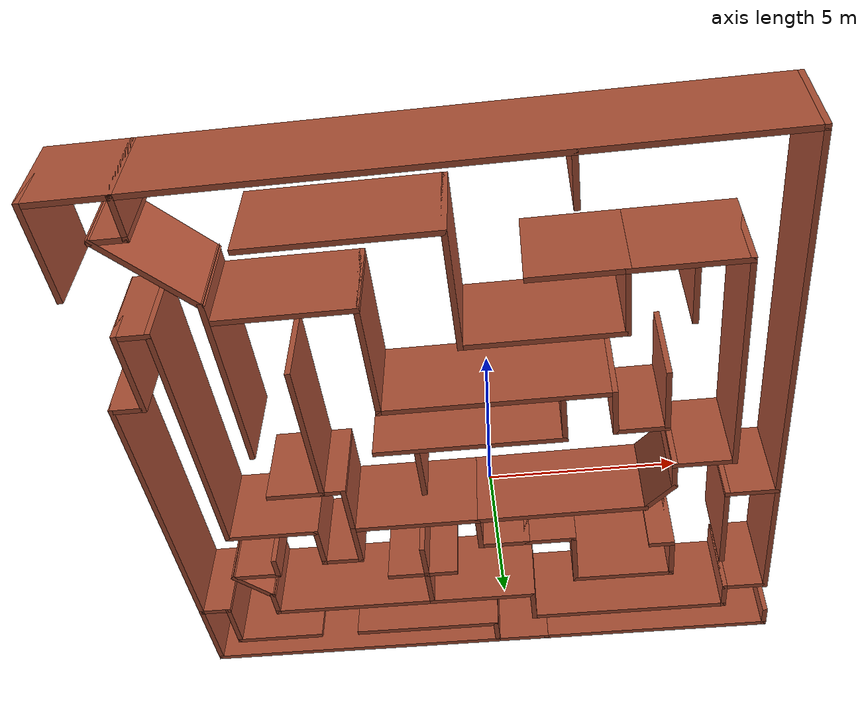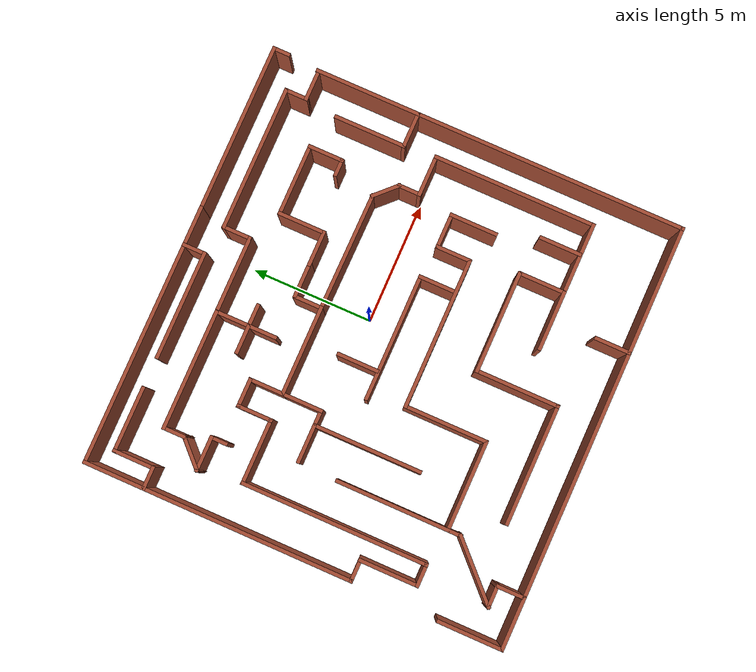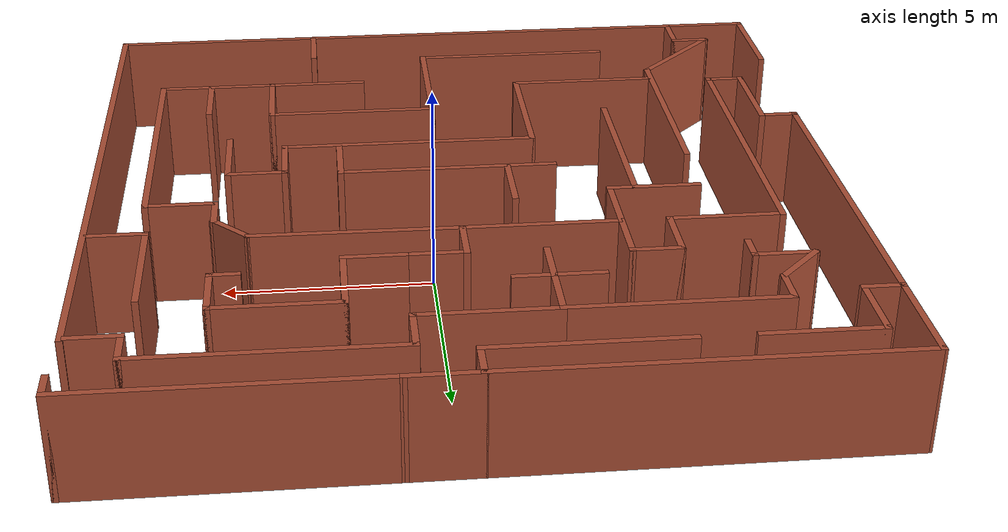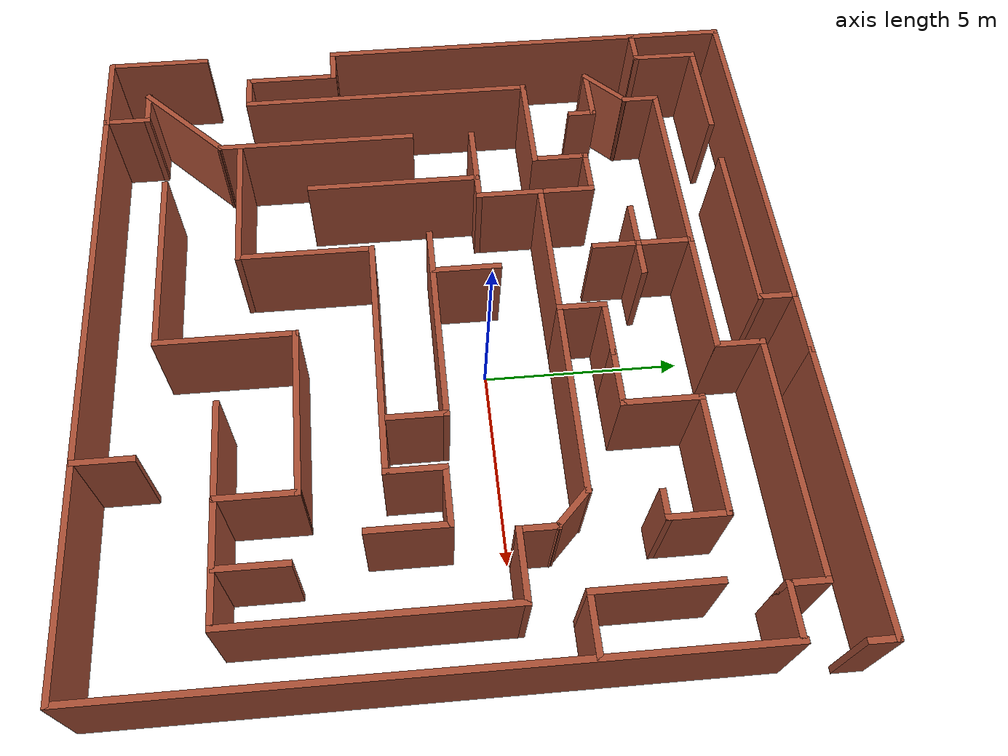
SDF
<?xml version='1.0'?>
<sdf version='1.7'>
  <model name='Maze'>
    <pose>-0.775833 -1.0414 0 0 -0 0</pose>
    <link name='Wall_10'>
      <collision name='Wall_10_Collision'>
        <geometry>
          <box>
            <size>1.75 0.15 2.5</size>
          </box>
        </geometry>
        <pose>0 0 1.25 0 -0 0</pose>
      </collision>
      <visual name='Wall_10_Visual'>
        <pose>0 0 1.25 0 -0 0</pose>
        <geometry>
          <box>
            <size>1.75 0.15 2.5</size>
          </box>
        </geometry>
        <material>
          <script>
            <uri>file://media/materials/scripts/gazebo.material</uri>
            <name>Gazebo/Bricks</name>
          </script>
          <ambient>1 1 1 1</ambient>
        </material>
        <meta>
          <layer>0</layer>
        </meta>
      </visual>
      <pose>-7.88795 6.98048 0 0 -0 -1.5708</pose>
    </link>
    <link name='Wall_100'>
      <collision name='Wall_100_Collision'>
        <geometry>
          <box>
            <size>1.5 0.15 2.5</size>
          </box>
        </geometry>
        <pose>0 0 1.25 0 -0 0</pose>
      </collision>
      <visual name='Wall_100_Visual'>
        <pose>0 0 1.25 0 -0 0</pose>
        <geometry>
          <box>
            <size>1.5 0.15 2.5</size>
          </box>
        </geometry>
        <material>
          <script>
            <uri>file://media/materials/scripts/gazebo.material</uri>
            <name>Gazebo/Bricks</name>
          </script>
          <ambient>1 1 1 1</ambient>
        </material>
        <meta>
          <layer>0</layer>
        </meta>
      </visual>
      <pose>5.81205 5.10548 0 0 -0 -1.5708</pose>
    </link>
    <link name='Wall_101'>
      <collision name='Wall_101_Collision'>
        <geometry>
          <box>
            <size>0.75 0.15 2.5</size>
          </box>
        </geometry>
        <pose>0 0 1.25 0 -0 0</pose>
      </collision>
      <visual name='Wall_101_Visual'>
        <pose>0 0 1.25 0 -0 0</pose>
        <geometry>
          <box>
            <size>0.75 0.15 2.5</size>
          </box>
        </geometry>
        <material>
          <script>
            <uri>file://media/materials/scripts/gazebo.material</uri>
            <name>Gazebo/Bricks</name>
          </script>
          <ambient>1 1 1 1</ambient>
        </material>
        <meta>
          <layer>0</layer>
        </meta>
      </visual>
      <pose>5.51205 4.43048 0 0 -0 3.14159</pose>
    </link>
    <link name='Wall_103'>
      <collision name='Wall_103_Collision'>
        <geometry>
          <box>
            <size>1.5 0.15 2.5</size>
          </box>
        </geometry>
        <pose>0 0 1.25 0 -0 0</pose>
      </collision>
      <visual name='Wall_103_Visual'>
        <pose>0 0 1.25 0 -0 0</pose>
        <geometry>
          <box>
            <size>1.5 0.15 2.5</size>
          </box>
        </geometry>
        <material>
          <script>
            <uri>file://media/materials/scripts/gazebo.material</uri>
            <name>Gazebo/Bricks</name>
          </script>
          <ambient>1 1 1 1</ambient>
        </material>
        <meta>
          <layer>0</layer>
        </meta>
      </visual>
      <pose>7.96548 2.47455 0 0 -0 3.14159</pose>
    </link>
    <link name='Wall_104'>
      <collision name='Wall_104_Collision'>
        <geometry>
          <box>
            <size>3 0.15 2.5</size>
          </box>
        </geometry>
        <pose>0 0 1.25 0 -0 0</pose>
      </collision>
      <visual name='Wall_104_Visual'>
        <pose>0 0 1.25 0 -0 0</pose>
        <geometry>
          <box>
            <size>3 0.15 2.5</size>
          </box>
        </geometry>
        <material>
          <script>
            <uri>file://media/materials/scripts/gazebo.material</uri>
            <name>Gazebo/Bricks</name>
          </script>
          <ambient>1 1 1 1</ambient>
        </material>
        <meta>
          <layer>0</layer>
        </meta>
      </visual>
      <pose>7.29048 3.89955 0 0 -0 1.5708</pose>
    </link>
    <link name='Wall_106'>
      <collision name='Wall_106_Collision'>
        <geometry>
          <box>
            <size>7 0.15 2.5</size>
          </box>
        </geometry>
        <pose>0 0 1.25 0 -0 0</pose>
      </collision>
      <visual name='Wall_106_Visual'>
        <pose>0 0 1.25 0 -0 0</pose>
        <geometry>
          <box>
            <size>7 0.15 2.5</size>
          </box>
        </geometry>
        <material>
          <script>
            <uri>file://media/materials/scripts/gazebo.material</uri>
            <name>Gazebo/Bricks</name>
          </script>
          <ambient>1 1 1 1</ambient>
        </material>
        <meta>
          <layer>0</layer>
        </meta>
      </visual>
      <pose>5.3579 8.63349 0 0 -0 0</pose>
    </link>
    <link name='Wall_107'>
      <collision name='Wall_107_Collision'>
        <geometry>
          <box>
            <size>0.75 0.15 2.5</size>
          </box>
        </geometry>
        <pose>0 0 1.25 0 -0 0</pose>
      </collision>
      <visual name='Wall_107_Visual'>
        <pose>0 0 1.25 0 -0 0</pose>
        <geometry>
          <box>
            <size>0.75 0.15 2.5</size>
          </box>
        </geometry>
        <material>
          <script>
            <uri>file://media/materials/scripts/gazebo.material</uri>
            <name>Gazebo/Bricks</name>
          </script>
          <ambient>1 1 1 1</ambient>
        </material>
        <meta>
          <layer>0</layer>
        </meta>
      </visual>
      <pose>8.7829 8.33349 0 0 -0 -1.5708</pose>
    </link>
    <link name='Wall_11'>
      <collision name='Wall_11_Collision'>
        <geometry>
          <box>
            <size>1 0.15 2.5</size>
          </box>
        </geometry>
        <pose>0 0 1.25 0 -0 0</pose>
      </collision>
      <visual name='Wall_11_Visual'>
        <pose>0 0 1.25 0 -0 0</pose>
        <geometry>
          <box>
            <size>1 0.15 2.5</size>
          </box>
        </geometry>
        <material>
          <script>
            <uri>file://media/materials/scripts/gazebo.material</uri>
            <name>Gazebo/Bricks</name>
          </script>
          <ambient>1 1 1 1</ambient>
        </material>
        <meta>
          <layer>0</layer>
        </meta>
      </visual>
      <pose>-8.31295 6.18048 0 0 -0 3.14159</pose>
    </link>
    <link name='Wall_12'>
      <collision name='Wall_12_Collision'>
        <geometry>
          <box>
            <size>2.6029 0.15 2.5</size>
          </box>
        </geometry>
        <pose>0 0 1.25 0 -0 0</pose>
      </collision>
      <visual name='Wall_12_Visual'>
        <pose>0 0 1.25 0 -0 0</pose>
        <geometry>
          <box>
            <size>2.6029 0.15 2.5</size>
          </box>
        </geometry>
        <material>
          <script>
            <uri>file://media/materials/scripts/gazebo.material</uri>
            <name>Gazebo/Bricks</name>
          </script>
          <ambient>1 1 1 1</ambient>
        </material>
        <meta>
          <layer>0</layer>
        </meta>
      </visual>
      <pose>-8.73665 7.40692 0 0 -0 1.56974</pose>
    </link>
    <link name='Wall_14'>
      <collision name='Wall_14_Collision'>
        <geometry>
          <box>
            <size>8.75 0.15 2.5</size>
          </box>
        </geometry>
        <pose>0 0 1.25 0 -0 0</pose>
      </collision>
      <visual name='Wall_14_Visual'>
        <pose>0 0 1.25 0 -0 0</pose>
        <geometry>
          <box>
            <size>8.75 0.15 2.5</size>
          </box>
        </geometry>
        <material>
          <script>
            <uri>file://media/materials/scripts/gazebo.material</uri>
            <name>Gazebo/Bricks</name>
          </script>
          <ambient>1 1 1 1</ambient>
        </material>
        <meta>
          <layer>0</layer>
        </meta>
      </visual>
      <pose>-8.73795 1.88047 0 0 -0 -1.5708</pose>
    </link>
    <link name='Wall_15'>
      <collision name='Wall_15_Collision'>
        <geometry>
          <box>
            <size>1 0.15 2.5</size>
          </box>
        </geometry>
        <pose>0 0 1.25 0 -0 0</pose>
      </collision>
      <visual name='Wall_15_Visual'>
        <pose>0 0 1.25 0 -0 0</pose>
        <geometry>
          <box>
            <size>1 0.15 2.5</size>
          </box>
        </geometry>
        <material>
          <script>
            <uri>file://media/materials/scripts/gazebo.material</uri>
            <name>Gazebo/Bricks</name>
          </script>
          <ambient>1 1 1 1</ambient>
        </material>
        <meta>
          <layer>0</layer>
        </meta>
      </visual>
      <pose>-8.31295 -2.41953 0 0 -0 0</pose>
    </link>
    <link name='Wall_16'>
      <collision name='Wall_16_Collision'>
        <geometry>
          <box>
            <size>2.5 0.15 2.5</size>
          </box>
        </geometry>
        <pose>0 0 1.25 0 -0 0</pose>
      </collision>
      <visual name='Wall_16_Visual'>
        <pose>0 0 1.25 0 -0 0</pose>
        <geometry>
          <box>
            <size>2.5 0.15 2.5</size>
          </box>
        </geometry>
        <material>
          <script>
            <uri>file://media/materials/scripts/gazebo.material</uri>
            <name>Gazebo/Bricks</name>
          </script>
          <ambient>1 1 1 1</ambient>
        </material>
        <meta>
          <layer>0</layer>
        </meta>
      </visual>
      <pose>-7.88795 -3.59452 0 0 -0 -1.5708</pose>
    </link>
    <link name='Wall_17'>
      <collision name='Wall_17_Collision'>
        <geometry>
          <box>
            <size>1 0.15 2.5</size>
          </box>
        </geometry>
        <pose>0 0 1.25 0 -0 0</pose>
      </collision>
      <visual name='Wall_17_Visual'>
        <pose>0 0 1.25 0 -0 0</pose>
        <geometry>
          <box>
            <size>1 0.15 2.5</size>
          </box>
        </geometry>
        <material>
          <script>
            <uri>file://media/materials/scripts/gazebo.material</uri>
            <name>Gazebo/Bricks</name>
          </script>
          <ambient>1 1 1 1</ambient>
        </material>
        <meta>
          <layer>0</layer>
        </meta>
      </visual>
      <pose>-7.46295 -4.76952 0 0 -0 0</pose>
    </link>
    <link name='Wall_18'>
      <collision name='Wall_18_Collision'>
        <geometry>
          <box>
            <size>7.75 0.15 2.5</size>
          </box>
        </geometry>
        <pose>0 0 1.25 0 -0 0</pose>
      </collision>
      <visual name='Wall_18_Visual'>
        <pose>0 0 1.25 0 -0 0</pose>
        <geometry>
          <box>
            <size>7.75 0.15 2.5</size>
          </box>
        </geometry>
        <material>
          <script>
            <uri>file://media/materials/scripts/gazebo.material</uri>
            <name>Gazebo/Bricks</name>
          </script>
          <ambient>1 1 1 1</ambient>
        </material>
        <meta>
          <layer>0</layer>
        </meta>
      </visual>
      <pose>-7.03795 -0.969525 0 0 -0 1.5708</pose>
    </link>
    <link name='Wall_19'>
      <collision name='Wall_19_Collision'>
        <geometry>
          <box>
            <size>2.75 0.15 2.5</size>
          </box>
        </geometry>
        <pose>0 0 1.25 0 -0 0</pose>
      </collision>
      <visual name='Wall_19_Visual'>
        <pose>0 0 1.25 0 -0 0</pose>
        <geometry>
          <box>
            <size>2.75 0.15 2.5</size>
          </box>
        </geometry>
        <material>
          <script>
            <uri>file://media/materials/scripts/gazebo.material</uri>
            <name>Gazebo/Bricks</name>
          </script>
          <ambient>1 1 1 1</ambient>
        </material>
        <meta>
          <layer>0</layer>
        </meta>
      </visual>
      <pose>-5.73795 2.83047 0 0 -0 0</pose>
    </link>
    <link name='Wall_20'>
      <collision name='Wall_20_Collision'>
        <geometry>
          <box>
            <size>1.5 0.15 2.5</size>
          </box>
        </geometry>
        <pose>0 0 1.25 0 -0 0</pose>
      </collision>
      <visual name='Wall_20_Visual'>
        <pose>0 0 1.25 0 -0 0</pose>
        <geometry>
          <box>
            <size>1.5 0.15 2.5</size>
          </box>
        </geometry>
        <material>
          <script>
            <uri>file://media/materials/scripts/gazebo.material</uri>
            <name>Gazebo/Bricks</name>
          </script>
          <ambient>1 1 1 1</ambient>
        </material>
        <meta>
          <layer>0</layer>
        </meta>
      </visual>
      <pose>-4.43795 3.50548 0 0 -0 1.5708</pose>
    </link>
    <link name='Wall_21'>
      <collision name='Wall_21_Collision'>
        <geometry>
          <box>
            <size>1.25 0.15 2.5</size>
          </box>
        </geometry>
        <pose>0 0 1.25 0 -0 0</pose>
      </collision>
      <visual name='Wall_21_Visual'>
        <pose>0 0 1.25 0 -0 0</pose>
        <geometry>
          <box>
            <size>1.25 0.15 2.5</size>
          </box>
        </geometry>
        <material>
          <script>
            <uri>file://media/materials/scripts/gazebo.material</uri>
            <name>Gazebo/Bricks</name>
          </script>
          <ambient>1 1 1 1</ambient>
        </material>
        <meta>
          <layer>0</layer>
        </meta>
      </visual>
      <pose>-3.88795 4.18048 0 0 -0 0</pose>
    </link>
    <link name='Wall_22'>
      <collision name='Wall_22_Collision'>
        <geometry>
          <box>
            <size>1.5 0.15 2.5</size>
          </box>
        </geometry>
        <pose>0 0 1.25 0 -0 0</pose>
      </collision>
      <visual name='Wall_22_Visual'>
        <pose>0 0 1.25 0 -0 0</pose>
        <geometry>
          <box>
            <size>1.5 0.15 2.5</size>
          </box>
        </geometry>
        <material>
          <script>
            <uri>file://media/materials/scripts/gazebo.material</uri>
            <name>Gazebo/Bricks</name>
          </script>
          <ambient>1 1 1 1</ambient>
        </material>
        <meta>
          <layer>0</layer>
        </meta>
      </visual>
      <pose>-3.33795 3.50548 0 0 -0 -1.5708</pose>
    </link>
    <link name='Wall_23'>
      <collision name='Wall_23_Collision'>
        <geometry>
          <box>
            <size>3.75 0.15 2.5</size>
          </box>
        </geometry>
        <pose>0 0 1.25 0 -0 0</pose>
      </collision>
      <visual name='Wall_23_Visual'>
        <pose>0 0 1.25 0 -0 0</pose>
        <geometry>
          <box>
            <size>3.75 0.15 2.5</size>
          </box>
        </geometry>
        <material>
          <script>
            <uri>file://media/materials/scripts/gazebo.material</uri>
            <name>Gazebo/Bricks</name>
          </script>
          <ambient>1 1 1 1</ambient>
        </material>
        <meta>
          <layer>0</layer>
        </meta>
      </visual>
      <pose>-1.53795 2.83047 0 0 -0 0</pose>
    </link>
    <link name='Wall_24'>
      <collision name='Wall_24_Collision'>
        <geometry>
          <box>
            <size>1.25 0.15 2.5</size>
          </box>
        </geometry>
        <pose>0 0 1.25 0 -0 0</pose>
      </collision>
      <visual name='Wall_24_Visual'>
        <pose>0 0 1.25 0 -0 0</pose>
        <geometry>
          <box>
            <size>1.25 0.15 2.5</size>
          </box>
        </geometry>
        <material>
          <script>
            <uri>file://media/materials/scripts/gazebo.material</uri>
            <name>Gazebo/Bricks</name>
          </script>
          <ambient>1 1 1 1</ambient>
        </material>
        <meta>
          <layer>0</layer>
        </meta>
      </visual>
      <pose>0.262048 3.38048 0 0 -0 1.5708</pose>
    </link>
    <link name='Wall_25'>
      <collision name='Wall_25_Collision'>
        <geometry>
          <box>
            <size>1.5 0.15 2.5</size>
          </box>
        </geometry>
        <pose>0 0 1.25 0 -0 0</pose>
      </collision>
      <visual name='Wall_25_Visual'>
        <pose>0 0 1.25 0 -0 0</pose>
        <geometry>
          <box>
            <size>1.5 0.15 2.5</size>
          </box>
        </geometry>
        <material>
          <script>
            <uri>file://media/materials/scripts/gazebo.material</uri>
            <name>Gazebo/Bricks</name>
          </script>
          <ambient>1 1 1 1</ambient>
        </material>
        <meta>
          <layer>0</layer>
        </meta>
      </visual>
      <pose>0.937048 3.93047 0 0 -0 0</pose>
    </link>
    <link name='Wall_27'>
      <collision name='Wall_27_Collision'>
        <geometry>
          <box>
            <size>6 0.15 2.5</size>
          </box>
        </geometry>
        <pose>0 0 1.25 0 -0 0</pose>
      </collision>
      <visual name='Wall_27_Visual'>
        <pose>0 0 1.25 0 -0 0</pose>
        <geometry>
          <box>
            <size>6 0.15 2.5</size>
          </box>
        </geometry>
        <material>
          <script>
            <uri>file://media/materials/scripts/gazebo.material</uri>
            <name>Gazebo/Bricks</name>
          </script>
          <ambient>1 1 1 1</ambient>
        </material>
        <meta>
          <layer>0</layer>
        </meta>
      </visual>
      <pose>4.53705 7.53048 0 0 -0 0</pose>
    </link>
    <link name='Wall_28'>
      <collision name='Wall_28_Collision'>
        <geometry>
          <box>
            <size>1 0.15 2.5</size>
          </box>
        </geometry>
        <pose>0 0 1.25 0 -0 0</pose>
      </collision>
      <visual name='Wall_28_Visual'>
        <pose>0 0 1.25 0 -0 0</pose>
        <geometry>
          <box>
            <size>1 0.15 2.5</size>
          </box>
        </geometry>
        <material>
          <script>
            <uri>file://media/materials/scripts/gazebo.material</uri>
            <name>Gazebo/Bricks</name>
          </script>
          <ambient>1 1 1 1</ambient>
        </material>
        <meta>
          <layer>0</layer>
        </meta>
      </visual>
      <pose>7.46205 7.10548 0 0 -0 -1.5708</pose>
    </link>
    <link name='Wall_29'>
      <collision name='Wall_29_Collision'>
        <geometry>
          <box>
            <size>1.25 0.15 2.5</size>
          </box>
        </geometry>
        <pose>0 0 1.25 0 -0 0</pose>
      </collision>
      <visual name='Wall_29_Visual'>
        <pose>0 0 1.25 0 -0 0</pose>
        <geometry>
          <box>
            <size>1.25 0.15 2.5</size>
          </box>
        </geometry>
        <material>
          <script>
            <uri>file://media/materials/scripts/gazebo.material</uri>
            <name>Gazebo/Bricks</name>
          </script>
          <ambient>1 1 1 1</ambient>
        </material>
        <meta>
          <layer>0</layer>
        </meta>
      </visual>
      <pose>8.01205 6.68048 0 0 -0 0</pose>
    </link>
    <link name='Wall_3'>
      <collision name='Wall_3_Collision'>
        <geometry>
          <box>
            <size>9.25 0.15 2.5</size>
          </box>
        </geometry>
        <pose>0 0 1.25 0 -0 0</pose>
      </collision>
      <visual name='Wall_3_Visual'>
        <pose>0 0 1.25 0 -0 0</pose>
        <geometry>
          <box>
            <size>9.25 0.15 2.5</size>
          </box>
        </geometry>
        <material>
          <script>
            <uri>file://media/materials/scripts/gazebo.material</uri>
            <name>Gazebo/Bricks</name>
          </script>
          <ambient>1 1 1 1</ambient>
        </material>
        <meta>
          <layer>0</layer>
        </meta>
      </visual>
      <pose>-4.18535 8.63337 0 0 -0 3.14159</pose>
    </link>
    <link name='Wall_31'>
      <collision name='Wall_31_Collision'>
        <geometry>
          <box>
            <size>1.25 0.15 2.5</size>
          </box>
        </geometry>
        <pose>0 0 1.25 0 -0 0</pose>
      </collision>
      <visual name='Wall_31_Visual'>
        <pose>0 0 1.25 0 -0 0</pose>
        <geometry>
          <box>
            <size>1.25 0.15 2.5</size>
          </box>
        </geometry>
        <material>
          <script>
            <uri>file://media/materials/scripts/gazebo.material</uri>
            <name>Gazebo/Bricks</name>
          </script>
          <ambient>1 1 1 1</ambient>
        </material>
        <meta>
          <layer>0</layer>
        </meta>
      </visual>
      <pose>1.61205 6.98048 0 0 -0 -1.5708</pose>
    </link>
    <link name='Wall_32'>
      <collision name='Wall_32_Collision'>
        <geometry>
          <box>
            <size>3.25 0.15 2.5</size>
          </box>
        </geometry>
        <pose>0 0 1.25 0 -0 0</pose>
      </collision>
      <visual name='Wall_32_Visual'>
        <pose>0 0 1.25 0 -0 0</pose>
        <geometry>
          <box>
            <size>3.25 0.15 2.5</size>
          </box>
        </geometry>
        <material>
          <script>
            <uri>file://media/materials/scripts/gazebo.material</uri>
            <name>Gazebo/Bricks</name>
          </script>
          <ambient>1 1 1 1</ambient>
        </material>
        <meta>
          <layer>0</layer>
        </meta>
      </visual>
      <pose>0.062048 6.43048 0 0 -0 3.14159</pose>
    </link>
    <link name='Wall_33'>
      <collision name='Wall_33_Collision'>
        <geometry>
          <box>
            <size>1.5 0.15 2.5</size>
          </box>
        </geometry>
        <pose>0 0 1.25 0 -0 0</pose>
      </collision>
      <visual name='Wall_33_Visual'>
        <pose>0 0 1.25 0 -0 0</pose>
        <geometry>
          <box>
            <size>1.5 0.15 2.5</size>
          </box>
        </geometry>
        <material>
          <script>
            <uri>file://media/materials/scripts/gazebo.material</uri>
            <name>Gazebo/Bricks</name>
          </script>
          <ambient>1 1 1 1</ambient>
        </material>
        <meta>
          <layer>0</layer>
        </meta>
      </visual>
      <pose>-1.48795 5.75547 0 0 -0 -1.5708</pose>
    </link>
    <link name='Wall_34'>
      <collision name='Wall_34_Collision'>
        <geometry>
          <box>
            <size>1.25 0.15 2.5</size>
          </box>
        </geometry>
        <pose>0 0 1.25 0 -0 0</pose>
      </collision>
      <visual name='Wall_34_Visual'>
        <pose>0 0 1.25 0 -0 0</pose>
        <geometry>
          <box>
            <size>1.25 0.15 2.5</size>
          </box>
        </geometry>
        <material>
          <script>
            <uri>file://media/materials/scripts/gazebo.material</uri>
            <name>Gazebo/Bricks</name>
          </script>
          <ambient>1 1 1 1</ambient>
        </material>
        <meta>
          <layer>0</layer>
        </meta>
      </visual>
      <pose>-2.03795 5.08048 0 0 -0 3.14159</pose>
    </link>
    <link name='Wall_36'>
      <collision name='Wall_36_Collision'>
        <geometry>
          <box>
            <size>1.25 0.15 2.5</size>
          </box>
        </geometry>
        <pose>0 0 1.25 0 -0 0</pose>
      </collision>
      <visual name='Wall_36_Visual'>
        <pose>0 0 1.25 0 -0 0</pose>
        <geometry>
          <box>
            <size>1.25 0.15 2.5</size>
          </box>
        </geometry>
        <material>
          <script>
            <uri>file://media/materials/scripts/gazebo.material</uri>
            <name>Gazebo/Bricks</name>
          </script>
          <ambient>1 1 1 1</ambient>
        </material>
        <meta>
          <layer>0</layer>
        </meta>
      </visual>
      <pose>-1.48795 4.53048 0 0 -0 -1.5708</pose>
    </link>
    <link name='Wall_38'>
      <collision name='Wall_38_Collision'>
        <geometry>
          <box>
            <size>1 0.15 2.5</size>
          </box>
        </geometry>
        <pose>0 0 1.25 0 -0 0</pose>
      </collision>
      <visual name='Wall_38_Visual'>
        <pose>0 0 1.25 0 -0 0</pose>
        <geometry>
          <box>
            <size>1 0.15 2.5</size>
          </box>
        </geometry>
        <material>
          <script>
            <uri>file://media/materials/scripts/gazebo.material</uri>
            <name>Gazebo/Bricks</name>
          </script>
          <ambient>1 1 1 1</ambient>
        </material>
        <meta>
          <layer>0</layer>
        </meta>
      </visual>
      <pose>-1.06295 5.08048 0 0 -0 0</pose>
    </link>
    <link name='Wall_40'>
      <collision name='Wall_40_Collision'>
        <geometry>
          <box>
            <size>5 0.15 2.5</size>
          </box>
        </geometry>
        <pose>0 0 1.25 0 -0 0</pose>
      </collision>
      <visual name='Wall_40_Visual'>
        <pose>0 0 1.25 0 -0 0</pose>
        <geometry>
          <box>
            <size>5 0.15 2.5</size>
          </box>
        </geometry>
        <material>
          <script>
            <uri>file://media/materials/scripts/gazebo.material</uri>
            <name>Gazebo/Bricks</name>
          </script>
          <ambient>1 1 1 1</ambient>
        </material>
        <meta>
          <layer>0</layer>
        </meta>
      </visual>
      <pose>-3.91295 6.43048 0 0 -0 3.14159</pose>
    </link>
    <link name='Wall_41'>
      <collision name='Wall_41_Collision'>
        <geometry>
          <box>
            <size>1 0.15 2.5</size>
          </box>
        </geometry>
        <pose>0 0 1.25 0 -0 0</pose>
      </collision>
      <visual name='Wall_41_Visual'>
        <pose>0 0 1.25 0 -0 0</pose>
        <geometry>
          <box>
            <size>1 0.15 2.5</size>
          </box>
        </geometry>
        <material>
          <script>
            <uri>file://media/materials/scripts/gazebo.material</uri>
            <name>Gazebo/Bricks</name>
          </script>
          <ambient>1 1 1 1</ambient>
        </material>
        <meta>
          <layer>0</layer>
        </meta>
      </visual>
      <pose>-6.33795 6.00547 0 0 -0 -1.5708</pose>
    </link>
    <link name='Wall_42'>
      <collision name='Wall_42_Collision'>
        <geometry>
          <box>
            <size>1.5 0.15 2.5</size>
          </box>
        </geometry>
        <pose>0 0 1.25 0 -0 0</pose>
      </collision>
      <visual name='Wall_42_Visual'>
        <pose>0 0 1.25 0 -0 0</pose>
        <geometry>
          <box>
            <size>1.5 0.15 2.5</size>
          </box>
        </geometry>
        <material>
          <script>
            <uri>file://media/materials/scripts/gazebo.material</uri>
            <name>Gazebo/Bricks</name>
          </script>
          <ambient>1 1 1 1</ambient>
        </material>
        <meta>
          <layer>0</layer>
        </meta>
      </visual>
      <pose>-6.81525 5.10318 0 0 -0 -2.35619</pose>
    </link>
    <link name='Wall_43'>
      <collision name='Wall_43_Collision'>
        <geometry>
          <box>
            <size>1.5 0.15 2.5</size>
          </box>
        </geometry>
        <pose>0 0 1.25 0 -0 0</pose>
      </collision>
      <visual name='Wall_43_Visual'>
        <pose>0 0 1.25 0 -0 0</pose>
        <geometry>
          <box>
            <size>1.5 0.15 2.5</size>
          </box>
        </geometry>
        <material>
          <script>
            <uri>file://media/materials/scripts/gazebo.material</uri>
            <name>Gazebo/Bricks</name>
          </script>
          <ambient>1 1 1 1</ambient>
        </material>
        <meta>
          <layer>0</layer>
        </meta>
      </visual>
      <pose>-6.61755 4.62588 0 0 -0 0</pose>
    </link>
    <link name='Wall_44'>
      <collision name='Wall_44_Collision'>
        <geometry>
          <box>
            <size>0.75 0.15 2.5</size>
          </box>
        </geometry>
        <pose>0 0 1.25 0 -0 0</pose>
      </collision>
      <visual name='Wall_44_Visual'>
        <pose>0 0 1.25 0 -0 0</pose>
        <geometry>
          <box>
            <size>0.75 0.15 2.5</size>
          </box>
        </geometry>
        <material>
          <script>
            <uri>file://media/materials/scripts/gazebo.material</uri>
            <name>Gazebo/Bricks</name>
          </script>
          <ambient>1 1 1 1</ambient>
        </material>
        <meta>
          <layer>0</layer>
        </meta>
      </visual>
      <pose>-5.94255 4.32588 0 0 -0 -1.5708</pose>
    </link>
    <link name='Wall_46'>
      <collision name='Wall_46_Collision'>
        <geometry>
          <box>
            <size>2.75 0.15 2.5</size>
          </box>
        </geometry>
        <pose>0 0 1.25 0 -0 0</pose>
      </collision>
      <visual name='Wall_46_Visual'>
        <pose>0 0 1.25 0 -0 0</pose>
        <geometry>
          <box>
            <size>2.75 0.15 2.5</size>
          </box>
        </geometry>
        <material>
          <script>
            <uri>file://media/materials/scripts/gazebo.material</uri>
            <name>Gazebo/Bricks</name>
          </script>
          <ambient>1 1 1 1</ambient>
        </material>
        <meta>
          <layer>0</layer>
        </meta>
      </visual>
      <pose>-8.7829 -7.33349 0 0 -0 -1.5708</pose>
    </link>
    <link name='Wall_47'>
      <collision name='Wall_47_Collision'>
        <geometry>
          <box>
            <size>2.25 0.15 2.5</size>
          </box>
        </geometry>
        <pose>0 0 1.25 0 -0 0</pose>
      </collision>
      <visual name='Wall_47_Visual'>
        <pose>0 0 1.25 0 -0 0</pose>
        <geometry>
          <box>
            <size>2.25 0.15 2.5</size>
          </box>
        </geometry>
        <material>
          <script>
            <uri>file://media/materials/scripts/gazebo.material</uri>
            <name>Gazebo/Bricks</name>
          </script>
          <ambient>1 1 1 1</ambient>
        </material>
        <meta>
          <layer>0</layer>
        </meta>
      </visual>
      <pose>-7.7329 -8.63349 0 0 -0 0</pose>
    </link>
    <link name='Wall_48'>
      <collision name='Wall_48_Collision'>
        <geometry>
          <box>
            <size>1.25 0.15 2.5</size>
          </box>
        </geometry>
        <pose>0 0 1.25 0 -0 0</pose>
      </collision>
      <visual name='Wall_48_Visual'>
        <pose>0 0 1.25 0 -0 0</pose>
        <geometry>
          <box>
            <size>1.25 0.15 2.5</size>
          </box>
        </geometry>
        <material>
          <script>
            <uri>file://media/materials/scripts/gazebo.material</uri>
            <name>Gazebo/Bricks</name>
          </script>
          <ambient>1 1 1 1</ambient>
        </material>
        <meta>
          <layer>0</layer>
        </meta>
      </visual>
      <pose>-6.6829 -8.08349 0 0 -0 1.5708</pose>
    </link>
    <link name='Wall_49'>
      <collision name='Wall_49_Collision'>
        <geometry>
          <box>
            <size>1 0.15 2.5</size>
          </box>
        </geometry>
        <pose>0 0 1.25 0 -0 0</pose>
      </collision>
      <visual name='Wall_49_Visual'>
        <pose>0 0 1.25 0 -0 0</pose>
        <geometry>
          <box>
            <size>1 0.15 2.5</size>
          </box>
        </geometry>
        <material>
          <script>
            <uri>file://media/materials/scripts/gazebo.material</uri>
            <name>Gazebo/Bricks</name>
          </script>
          <ambient>1 1 1 1</ambient>
        </material>
        <meta>
          <layer>0</layer>
        </meta>
      </visual>
      <pose>-7.1079 -7.53349 0 0 -0 3.14159</pose>
    </link>
    <link name='Wall_5'>
      <collision name='Wall_5_Collision'>
        <geometry>
          <box>
            <size>1.71825 0.15 2.5</size>
          </box>
        </geometry>
        <pose>0 0 1.25 0 -0 0</pose>
      </collision>
      <visual name='Wall_5_Visual'>
        <pose>0 0 1.25 0 -0 0</pose>
        <geometry>
          <box>
            <size>1.71825 0.15 2.5</size>
          </box>
        </geometry>
        <material>
          <script>
            <uri>file://media/materials/scripts/gazebo.material</uri>
            <name>Gazebo/Bricks</name>
          </script>
          <ambient>1 1 1 1</ambient>
        </material>
        <meta>
          <layer>0</layer>
        </meta>
      </visual>
      <pose>1.14877 8.63343 0 0 -0 -3.14152</pose>
    </link>
    <link name='Wall_50'>
      <collision name='Wall_50_Collision'>
        <geometry>
          <box>
            <size>3 0.15 2.5</size>
          </box>
        </geometry>
        <pose>0 0 1.25 0 -0 0</pose>
      </collision>
      <visual name='Wall_50_Visual'>
        <pose>0 0 1.25 0 -0 0</pose>
        <geometry>
          <box>
            <size>3 0.15 2.5</size>
          </box>
        </geometry>
        <material>
          <script>
            <uri>file://media/materials/scripts/gazebo.material</uri>
            <name>Gazebo/Bricks</name>
          </script>
          <ambient>1 1 1 1</ambient>
        </material>
        <meta>
          <layer>0</layer>
        </meta>
      </visual>
      <pose>-6.52527 -6.52586 0 0 -0 0.785398</pose>
    </link>
    <link name='Wall_51'>
      <collision name='Wall_51_Collision'>
        <geometry>
          <box>
            <size>5.25 0.15 2.5</size>
          </box>
        </geometry>
        <pose>0 0 1.25 0 -0 0</pose>
      </collision>
      <visual name='Wall_51_Visual'>
        <pose>0 0 1.25 0 -0 0</pose>
        <geometry>
          <box>
            <size>5.25 0.15 2.5</size>
          </box>
        </geometry>
        <material>
          <script>
            <uri>file://media/materials/scripts/gazebo.material</uri>
            <name>Gazebo/Bricks</name>
          </script>
          <ambient>1 1 1 1</ambient>
        </material>
        <meta>
          <layer>0</layer>
        </meta>
      </visual>
      <pose>-5.51764 -2.96824 0 0 -0 1.5708</pose>
    </link>
    <link name='Wall_53'>
      <collision name='Wall_53_Collision'>
        <geometry>
          <box>
            <size>1.75 0.15 2.5</size>
          </box>
        </geometry>
        <pose>0 0 1.25 0 -0 0</pose>
      </collision>
      <visual name='Wall_53_Visual'>
        <pose>0 0 1.25 0 -0 0</pose>
        <geometry>
          <box>
            <size>1.75 0.15 2.5</size>
          </box>
        </geometry>
        <material>
          <script>
            <uri>file://media/materials/scripts/gazebo.material</uri>
            <name>Gazebo/Bricks</name>
          </script>
          <ambient>1 1 1 1</ambient>
        </material>
        <meta>
          <layer>0</layer>
        </meta>
      </visual>
      <pose>-3.33795 2.03048 0 0 -0 -1.5708</pose>
    </link>
    <link name='Wall_54'>
      <collision name='Wall_54_Collision'>
        <geometry>
          <box>
            <size>2.25 0.15 2.5</size>
          </box>
        </geometry>
        <pose>0 0 1.25 0 -0 0</pose>
      </collision>
      <visual name='Wall_54_Visual'>
        <pose>0 0 1.25 0 -0 0</pose>
        <geometry>
          <box>
            <size>2.25 0.15 2.5</size>
          </box>
        </geometry>
        <material>
          <script>
            <uri>file://media/materials/scripts/gazebo.material</uri>
            <name>Gazebo/Bricks</name>
          </script>
          <ambient>1 1 1 1</ambient>
        </material>
        <meta>
          <layer>0</layer>
        </meta>
      </visual>
      <pose>-4.38795 1.23047 0 0 -0 3.14159</pose>
    </link>
    <link name='Wall_56'>
      <collision name='Wall_56_Collision'>
        <geometry>
          <box>
            <size>4.5 0.15 2.5</size>
          </box>
        </geometry>
        <pose>0 0 1.25 0 -0 0</pose>
      </collision>
      <visual name='Wall_56_Visual'>
        <pose>0 0 1.25 0 -0 0</pose>
        <geometry>
          <box>
            <size>4.5 0.15 2.5</size>
          </box>
        </geometry>
        <material>
          <script>
            <uri>file://media/materials/scripts/gazebo.material</uri>
            <name>Gazebo/Bricks</name>
          </script>
          <ambient>1 1 1 1</ambient>
        </material>
        <meta>
          <layer>0</layer>
        </meta>
      </visual>
      <pose>-3.94056 -0.967607 0 0 -0 -1.5708</pose>
    </link>
    <link name='Wall_58'>
      <collision name='Wall_58_Collision'>
        <geometry>
          <box>
            <size>3.75 0.15 2.5</size>
          </box>
        </geometry>
        <pose>0 0 1.25 0 -0 0</pose>
      </collision>
      <visual name='Wall_58_Visual'>
        <pose>0 0 1.25 0 -0 0</pose>
        <geometry>
          <box>
            <size>3.75 0.15 2.5</size>
          </box>
        </geometry>
        <material>
          <script>
            <uri>file://media/materials/scripts/gazebo.material</uri>
            <name>Gazebo/Bricks</name>
          </script>
          <ambient>1 1 1 1</ambient>
        </material>
        <meta>
          <layer>0</layer>
        </meta>
      </visual>
      <pose>-3.67924 -4.99261 0 0 -0 0</pose>
    </link>
    <link name='Wall_59'>
      <collision name='Wall_59_Collision'>
        <geometry>
          <box>
            <size>3.5 0.15 2.5</size>
          </box>
        </geometry>
        <pose>0 0 1.25 0 -0 0</pose>
      </collision>
      <visual name='Wall_59_Visual'>
        <pose>0 0 1.25 0 -0 0</pose>
        <geometry>
          <box>
            <size>3.5 0.15 2.5</size>
          </box>
        </geometry>
        <material>
          <script>
            <uri>file://media/materials/scripts/gazebo.material</uri>
            <name>Gazebo/Bricks</name>
          </script>
          <ambient>1 1 1 1</ambient>
        </material>
        <meta>
          <layer>0</layer>
        </meta>
      </visual>
      <pose>-1.87925 -3.31761 0 0 -0 1.5708</pose>
    </link>
    <link name='Wall_6'>
      <collision name='Wall_6_Collision'>
        <geometry>
          <box>
            <size>1 0.15 2.5</size>
          </box>
        </geometry>
        <pose>0 0 1.25 0 -0 0</pose>
      </collision>
      <visual name='Wall_6_Visual'>
        <pose>0 0 1.25 0 -0 0</pose>
        <geometry>
          <box>
            <size>1 0.15 2.5</size>
          </box>
        </geometry>
        <material>
          <script>
            <uri>file://media/materials/scripts/gazebo.material</uri>
            <name>Gazebo/Bricks</name>
          </script>
          <ambient>1 1 1 1</ambient>
        </material>
        <meta>
          <layer>0</layer>
        </meta>
      </visual>
      <pose>0.364648 8.20837 0 0 -0 -1.5708</pose>
    </link>
    <link name='Wall_65'>
      <collision name='Wall_65_Collision'>
        <geometry>
          <box>
            <size>1.5 0.15 2.5</size>
          </box>
        </geometry>
        <pose>0 0 1.25 0 -0 0</pose>
      </collision>
      <visual name='Wall_65_Visual'>
        <pose>0 0 1.25 0 -0 0</pose>
        <geometry>
          <box>
            <size>1.5 0.15 2.5</size>
          </box>
        </geometry>
        <material>
          <script>
            <uri>file://media/materials/scripts/gazebo.material</uri>
            <name>Gazebo/Bricks</name>
          </script>
          <ambient>1 1 1 1</ambient>
        </material>
        <meta>
          <layer>0</layer>
        </meta>
      </visual>
      <pose>2.89303 -0.832939 0 0 -0 1.5708</pose>
    </link>
    <link name='Wall_66'>
      <collision name='Wall_66_Collision'>
        <geometry>
          <box>
            <size>5.25 0.15 2.5</size>
          </box>
        </geometry>
        <pose>0 0 1.25 0 -0 0</pose>
      </collision>
      <visual name='Wall_66_Visual'>
        <pose>0 0 1.25 0 -0 0</pose>
        <geometry>
          <box>
            <size>5.25 0.15 2.5</size>
          </box>
        </geometry>
        <material>
          <script>
            <uri>file://media/materials/scripts/gazebo.material</uri>
            <name>Gazebo/Bricks</name>
          </script>
          <ambient>1 1 1 1</ambient>
        </material>
        <meta>
          <layer>0</layer>
        </meta>
      </visual>
      <pose>0.343029 -0.157939 0 0 -0 3.14159</pose>
    </link>
    <link name='Wall_68'>
      <collision name='Wall_68_Collision'>
        <geometry>
          <box>
            <size>1.75 0.15 2.5</size>
          </box>
        </geometry>
        <pose>0 0 1.25 0 -0 0</pose>
      </collision>
      <visual name='Wall_68_Visual'>
        <pose>0 0 1.25 0 -0 0</pose>
        <geometry>
          <box>
            <size>1.75 0.15 2.5</size>
          </box>
        </geometry>
        <material>
          <script>
            <uri>file://media/materials/scripts/gazebo.material</uri>
            <name>Gazebo/Bricks</name>
          </script>
          <ambient>1 1 1 1</ambient>
        </material>
        <meta>
          <layer>0</layer>
        </meta>
      </visual>
      <pose>-1.08946 0.694983 0 0 -0 1.5708</pose>
    </link>
    <link name='Wall_7'>
      <collision name='Wall_7_Collision'>
        <geometry>
          <box>
            <size>4.5 0.15 2.5</size>
          </box>
        </geometry>
        <pose>0 0 1.25 0 -0 0</pose>
      </collision>
      <visual name='Wall_7_Visual'>
        <pose>0 0 1.25 0 -0 0</pose>
        <geometry>
          <box>
            <size>4.5 0.15 2.5</size>
          </box>
        </geometry>
        <material>
          <script>
            <uri>file://media/materials/scripts/gazebo.material</uri>
            <name>Gazebo/Bricks</name>
          </script>
          <ambient>1 1 1 1</ambient>
        </material>
        <meta>
          <layer>0</layer>
        </meta>
      </visual>
      <pose>-1.81035 7.78337 0 0 -0 3.14159</pose>
    </link>
    <link name='Wall_70'>
      <collision name='Wall_70_Collision'>
        <geometry>
          <box>
            <size>15.5 0.15 2.5</size>
          </box>
        </geometry>
        <pose>0 0 1.25 0 -0 0</pose>
      </collision>
      <visual name='Wall_70_Visual'>
        <pose>0 0 1.25 0 -0 0</pose>
        <geometry>
          <box>
            <size>15.5 0.15 2.5</size>
          </box>
        </geometry>
        <material>
          <script>
            <uri>file://media/materials/scripts/gazebo.material</uri>
            <name>Gazebo/Bricks</name>
          </script>
          <ambient>1 1 1 1</ambient>
        </material>
        <meta>
          <layer>0</layer>
        </meta>
      </visual>
      <pose>0.992101 -8.63349 0 0 -0 0</pose>
    </link>
    <link name='Wall_71'>
      <collision name='Wall_71_Collision'>
        <geometry>
          <box>
            <size>15.5 0.15 2.5</size>
          </box>
        </geometry>
        <pose>0 0 1.25 0 -0 0</pose>
      </collision>
      <visual name='Wall_71_Visual'>
        <pose>0 0 1.25 0 -0 0</pose>
        <geometry>
          <box>
            <size>15.5 0.15 2.5</size>
          </box>
        </geometry>
        <material>
          <script>
            <uri>file://media/materials/scripts/gazebo.material</uri>
            <name>Gazebo/Bricks</name>
          </script>
          <ambient>1 1 1 1</ambient>
        </material>
        <meta>
          <layer>0</layer>
        </meta>
      </visual>
      <pose>8.6671 -0.958492 0 0 -0 1.5708</pose>
    </link>
    <link name='Wall_73'>
      <collision name='Wall_73_Collision'>
        <geometry>
          <box>
            <size>5 0.15 2.5</size>
          </box>
        </geometry>
        <pose>0 0 1.25 0 -0 0</pose>
      </collision>
      <visual name='Wall_73_Visual'>
        <pose>0 0 1.25 0 -0 0</pose>
        <geometry>
          <box>
            <size>5 0.15 2.5</size>
          </box>
        </geometry>
        <material>
          <script>
            <uri>file://media/materials/scripts/gazebo.material</uri>
            <name>Gazebo/Bricks</name>
          </script>
          <ambient>1 1 1 1</ambient>
        </material>
        <meta>
          <layer>0</layer>
        </meta>
      </visual>
      <pose>-1.96811 -6.9386 0 0 -0 0</pose>
    </link>
    <link name='Wall_76'>
      <collision name='Wall_76_Collision'>
        <geometry>
          <box>
            <size>3.5 0.15 2.5</size>
          </box>
        </geometry>
        <pose>0 0 1.25 0 -0 0</pose>
      </collision>
      <visual name='Wall_76_Visual'>
        <pose>0 0 1.25 0 -0 0</pose>
        <geometry>
          <box>
            <size>3.5 0.15 2.5</size>
          </box>
        </geometry>
        <material>
          <script>
            <uri>file://media/materials/scripts/gazebo.material</uri>
            <name>Gazebo/Bricks</name>
          </script>
          <ambient>1 1 1 1</ambient>
        </material>
        <meta>
          <layer>0</layer>
        </meta>
      </visual>
      <pose>0.456888 -5.2636 0 0 -0 1.5708</pose>
    </link>
    <link name='Wall_77'>
      <collision name='Wall_77_Collision'>
        <geometry>
          <box>
            <size>4.25 0.15 2.5</size>
          </box>
        </geometry>
        <pose>0 0 1.25 0 -0 0</pose>
      </collision>
      <visual name='Wall_77_Visual'>
        <pose>0 0 1.25 0 -0 0</pose>
        <geometry>
          <box>
            <size>4.25 0.15 2.5</size>
          </box>
        </geometry>
        <material>
          <script>
            <uri>file://media/materials/scripts/gazebo.material</uri>
            <name>Gazebo/Bricks</name>
          </script>
          <ambient>1 1 1 1</ambient>
        </material>
        <meta>
          <layer>0</layer>
        </meta>
      </visual>
      <pose>2.50689 -3.5886 0 0 -0 0</pose>
    </link>
    <link name='Wall_78'>
      <collision name='Wall_78_Collision'>
        <geometry>
          <box>
            <size>2 0.15 2.5</size>
          </box>
        </geometry>
        <pose>0 0 1.25 0 -0 0</pose>
      </collision>
      <visual name='Wall_78_Visual'>
        <pose>0 0 1.25 0 -0 0</pose>
        <geometry>
          <box>
            <size>2 0.15 2.5</size>
          </box>
        </geometry>
        <material>
          <script>
            <uri>file://media/materials/scripts/gazebo.material</uri>
            <name>Gazebo/Bricks</name>
          </script>
          <ambient>1 1 1 1</ambient>
        </material>
        <meta>
          <layer>0</layer>
        </meta>
      </visual>
      <pose>4.55689 -4.5136 0 0 -0 -1.5708</pose>
    </link>
    <link name='Wall_79'>
      <collision name='Wall_79_Collision'>
        <geometry>
          <box>
            <size>2.5 0.15 2.5</size>
          </box>
        </geometry>
        <pose>0 0 1.25 0 -0 0</pose>
      </collision>
      <visual name='Wall_79_Visual'>
        <pose>0 0 1.25 0 -0 0</pose>
        <geometry>
          <box>
            <size>2.5 0.15 2.5</size>
          </box>
        </geometry>
        <material>
          <script>
            <uri>file://media/materials/scripts/gazebo.material</uri>
            <name>Gazebo/Bricks</name>
          </script>
          <ambient>1 1 1 1</ambient>
        </material>
        <meta>
          <layer>0</layer>
        </meta>
      </visual>
      <pose>3.38189 -5.4386 0 0 -0 3.14159</pose>
    </link>
    <link name='Wall_81'>
      <collision name='Wall_81_Collision'>
        <geometry>
          <box>
            <size>3 0.15 2.5</size>
          </box>
        </geometry>
        <pose>0 0 1.25 0 -0 0</pose>
      </collision>
      <visual name='Wall_81_Visual'>
        <pose>0 0 1.25 0 -0 0</pose>
        <geometry>
          <box>
            <size>3 0.15 2.5</size>
          </box>
        </geometry>
        <material>
          <script>
            <uri>file://media/materials/scripts/gazebo.material</uri>
            <name>Gazebo/Bricks</name>
          </script>
          <ambient>1 1 1 1</ambient>
        </material>
        <meta>
          <layer>0</layer>
        </meta>
      </visual>
      <pose>5.98189 -5.4386 0 0 -0 0</pose>
    </link>
    <link name='Wall_82'>
      <collision name='Wall_82_Collision'>
        <geometry>
          <box>
            <size>6.75 0.15 2.5</size>
          </box>
        </geometry>
        <pose>0 0 1.25 0 -0 0</pose>
      </collision>
      <visual name='Wall_82_Visual'>
        <pose>0 0 1.25 0 -0 0</pose>
        <geometry>
          <box>
            <size>6.75 0.15 2.5</size>
          </box>
        </geometry>
        <material>
          <script>
            <uri>file://media/materials/scripts/gazebo.material</uri>
            <name>Gazebo/Bricks</name>
          </script>
          <ambient>1 1 1 1</ambient>
        </material>
        <meta>
          <layer>0</layer>
        </meta>
      </visual>
      <pose>7.40689 -2.1386 0 0 -0 1.5708</pose>
    </link>
    <link name='Wall_83'>
      <collision name='Wall_83_Collision'>
        <geometry>
          <box>
            <size>1.75 0.15 2.5</size>
          </box>
        </geometry>
        <pose>0 0 1.25 0 -0 0</pose>
      </collision>
      <visual name='Wall_83_Visual'>
        <pose>0 0 1.25 0 -0 0</pose>
        <geometry>
          <box>
            <size>1.75 0.15 2.5</size>
          </box>
        </geometry>
        <material>
          <script>
            <uri>file://media/materials/scripts/gazebo.material</uri>
            <name>Gazebo/Bricks</name>
          </script>
          <ambient>1 1 1 1</ambient>
        </material>
        <meta>
          <layer>0</layer>
        </meta>
      </visual>
      <pose>6.60689 1.1614 0 0 -0 3.14159</pose>
    </link>
    <link name='Wall_84'>
      <collision name='Wall_84_Collision'>
        <geometry>
          <box>
            <size>1 0.15 2.5</size>
          </box>
        </geometry>
        <pose>0 0 1.25 0 -0 0</pose>
      </collision>
      <visual name='Wall_84_Visual'>
        <pose>0 0 1.25 0 -0 0</pose>
        <geometry>
          <box>
            <size>1 0.15 2.5</size>
          </box>
        </geometry>
        <material>
          <script>
            <uri>file://media/materials/scripts/gazebo.material</uri>
            <name>Gazebo/Bricks</name>
          </script>
          <ambient>1 1 1 1</ambient>
        </material>
        <meta>
          <layer>0</layer>
        </meta>
      </visual>
      <pose>5.80689 1.5864 0 0 -0 1.5708</pose>
    </link>
    <link name='Wall_85'>
      <collision name='Wall_85_Collision'>
        <geometry>
          <box>
            <size>1.25 0.15 2.5</size>
          </box>
        </geometry>
        <pose>0 0 1.25 0 -0 0</pose>
      </collision>
      <visual name='Wall_85_Visual'>
        <pose>0 0 1.25 0 -0 0</pose>
        <geometry>
          <box>
            <size>1.25 0.15 2.5</size>
          </box>
        </geometry>
        <material>
          <script>
            <uri>file://media/materials/scripts/gazebo.material</uri>
            <name>Gazebo/Bricks</name>
          </script>
          <ambient>1 1 1 1</ambient>
        </material>
        <meta>
          <layer>0</layer>
        </meta>
      </visual>
      <pose>5.41798 2.40031 0 0 -0 2.35619</pose>
    </link>
    <link name='Wall_86'>
      <collision name='Wall_86_Collision'>
        <geometry>
          <box>
            <size>4.9172 0.15 2.5</size>
          </box>
        </geometry>
        <pose>0 0 1.25 0 -0 0</pose>
      </collision>
      <visual name='Wall_86_Visual'>
        <pose>0 0 1.25 0 -0 0</pose>
        <geometry>
          <box>
            <size>4.9172 0.15 2.5</size>
          </box>
        </geometry>
        <material>
          <script>
            <uri>file://media/materials/scripts/gazebo.material</uri>
            <name>Gazebo/Bricks</name>
          </script>
          <ambient>1 1 1 1</ambient>
        </material>
        <meta>
          <layer>0</layer>
        </meta>
      </visual>
      <pose>2.64556 2.80985 0 0 -0 3.13294</pose>
    </link>
    <link name='Wall_88'>
      <collision name='Wall_88_Collision'>
        <geometry>
          <box>
            <size>6.25 0.15 2.5</size>
          </box>
        </geometry>
        <pose>0 0 1.25 0 -0 0</pose>
      </collision>
      <visual name='Wall_88_Visual'>
        <pose>0 0 1.25 0 -0 0</pose>
        <geometry>
          <box>
            <size>6.25 0.15 2.5</size>
          </box>
        </geometry>
        <material>
          <script>
            <uri>file://media/materials/scripts/gazebo.material</uri>
            <name>Gazebo/Bricks</name>
          </script>
          <ambient>1 1 1 1</ambient>
        </material>
        <meta>
          <layer>0</layer>
        </meta>
      </visual>
      <pose>1.17075 -1.64261 0 0 -0 0</pose>
    </link>
    <link name='Wall_89'>
      <collision name='Wall_89_Collision'>
        <geometry>
          <box>
            <size>1.5 0.15 2.5</size>
          </box>
        </geometry>
        <pose>0 0 1.25 0 -0 0</pose>
      </collision>
      <visual name='Wall_89_Visual'>
        <pose>0 0 1.25 0 -0 0</pose>
        <geometry>
          <box>
            <size>1.5 0.15 2.5</size>
          </box>
        </geometry>
        <material>
          <script>
            <uri>file://media/materials/scripts/gazebo.material</uri>
            <name>Gazebo/Bricks</name>
          </script>
          <ambient>1 1 1 1</ambient>
        </material>
        <meta>
          <layer>0</layer>
        </meta>
      </visual>
      <pose>4.22075 -0.967615 0 0 -0 1.5708</pose>
    </link>
    <link name='Wall_9'>
      <collision name='Wall_9_Collision'>
        <geometry>
          <box>
            <size>2.75 0.15 2.5</size>
          </box>
        </geometry>
        <pose>0 0 1.25 0 -0 0</pose>
      </collision>
      <visual name='Wall_9_Visual'>
        <pose>0 0 1.25 0 -0 0</pose>
        <geometry>
          <box>
            <size>2.75 0.15 2.5</size>
          </box>
        </geometry>
        <material>
          <script>
            <uri>file://media/materials/scripts/gazebo.material</uri>
            <name>Gazebo/Bricks</name>
          </script>
          <ambient>1 1 1 1</ambient>
        </material>
        <meta>
          <layer>0</layer>
        </meta>
      </visual>
      <pose>-6.58795 7.78048 0 0 -0 3.14159</pose>
    </link>
    <link name='Wall_90'>
      <collision name='Wall_90_Collision'>
        <geometry>
          <box>
            <size>1.5 0.15 2.5</size>
          </box>
        </geometry>
        <pose>0 0 1.25 0 -0 0</pose>
      </collision>
      <visual name='Wall_90_Visual'>
        <pose>0 0 1.25 0 -0 0</pose>
        <geometry>
          <box>
            <size>1.5 0.15 2.5</size>
          </box>
        </geometry>
        <material>
          <script>
            <uri>file://media/materials/scripts/gazebo.material</uri>
            <name>Gazebo/Bricks</name>
          </script>
          <ambient>1 1 1 1</ambient>
        </material>
        <meta>
          <layer>0</layer>
        </meta>
      </visual>
      <pose>4.89576 -0.292615 0 0 -0 0</pose>
    </link>
    <link name='Wall_91'>
      <collision name='Wall_91_Collision'>
        <geometry>
          <box>
            <size>2 0.15 2.5</size>
          </box>
        </geometry>
        <pose>0 0 1.25 0 -0 0</pose>
      </collision>
      <visual name='Wall_91_Visual'>
        <pose>0 0 1.25 0 -0 0</pose>
        <geometry>
          <box>
            <size>2 0.15 2.5</size>
          </box>
        </geometry>
        <material>
          <script>
            <uri>file://media/materials/scripts/gazebo.material</uri>
            <name>Gazebo/Bricks</name>
          </script>
          <ambient>1 1 1 1</ambient>
        </material>
        <meta>
          <layer>0</layer>
        </meta>
      </visual>
      <pose>5.57076 -1.21761 0 0 -0 -1.5708</pose>
    </link>
    <link name='Wall_93'>
      <collision name='Wall_93_Collision'>
        <geometry>
          <box>
            <size>1.75 0.15 2.5</size>
          </box>
        </geometry>
        <pose>0 0 1.25 0 -0 0</pose>
      </collision>
      <visual name='Wall_93_Visual'>
        <pose>0 0 1.25 0 -0 0</pose>
        <geometry>
          <box>
            <size>1.75 0.15 2.5</size>
          </box>
        </geometry>
        <material>
          <script>
            <uri>file://media/materials/scripts/gazebo.material</uri>
            <name>Gazebo/Bricks</name>
          </script>
          <ambient>1 1 1 1</ambient>
        </material>
        <meta>
          <layer>0</layer>
        </meta>
      </visual>
      <pose>6.15143 -4.59992 0 0 -0 1.5708</pose>
    </link>
    <link name='Wall_95'>
      <collision name='Wall_95_Collision'>
        <geometry>
          <box>
            <size>1.5 0.15 2.5</size>
          </box>
        </geometry>
        <pose>0 0 1.25 0 -0 0</pose>
      </collision>
      <visual name='Wall_95_Visual'>
        <pose>0 0 1.25 0 -0 0</pose>
        <geometry>
          <box>
            <size>1.5 0.15 2.5</size>
          </box>
        </geometry>
        <material>
          <script>
            <uri>file://media/materials/scripts/gazebo.material</uri>
            <name>Gazebo/Bricks</name>
          </script>
          <ambient>1 1 1 1</ambient>
        </material>
        <meta>
          <layer>0</layer>
        </meta>
      </visual>
      <pose>3.4361 -7.93806 0 0 -0 1.5708</pose>
    </link>
    <link name='Wall_97'>
      <collision name='Wall_97_Collision'>
        <geometry>
          <box>
            <size>1.5 0.15 2.5</size>
          </box>
        </geometry>
        <pose>0 0 1.25 0 -0 0</pose>
      </collision>
      <visual name='Wall_97_Visual'>
        <pose>0 0 1.25 0 -0 0</pose>
        <geometry>
          <box>
            <size>1.5 0.15 2.5</size>
          </box>
        </geometry>
        <material>
          <script>
            <uri>file://media/materials/scripts/gazebo.material</uri>
            <name>Gazebo/Bricks</name>
          </script>
          <ambient>1 1 1 1</ambient>
        </material>
        <meta>
          <layer>0</layer>
        </meta>
      </visual>
      <pose>2.28705 3.93047 0 0 -0 0</pose>
    </link>
    <link name='Wall_98'>
      <collision name='Wall_98_Collision'>
        <geometry>
          <box>
            <size>2 0.15 2.5</size>
          </box>
        </geometry>
        <pose>0 0 1.25 0 -0 0</pose>
      </collision>
      <visual name='Wall_98_Visual'>
        <pose>0 0 1.25 0 -0 0</pose>
        <geometry>
          <box>
            <size>2 0.15 2.5</size>
          </box>
        </geometry>
        <material>
          <script>
            <uri>file://media/materials/scripts/gazebo.material</uri>
            <name>Gazebo/Bricks</name>
          </script>
          <ambient>1 1 1 1</ambient>
        </material>
        <meta>
          <layer>0</layer>
        </meta>
      </visual>
      <pose>2.96205 4.85548 0 0 -0 1.5708</pose>
    </link>
    <link name='Wall_99'>
      <collision name='Wall_99_Collision'>
        <geometry>
          <box>
            <size>3 0.15 2.5</size>
          </box>
        </geometry>
        <pose>0 0 1.25 0 -0 0</pose>
      </collision>
      <visual name='Wall_99_Visual'>
        <pose>0 0 1.25 0 -0 0</pose>
        <geometry>
          <box>
            <size>3 0.15 2.5</size>
          </box>
        </geometry>
        <material>
          <script>
            <uri>file://media/materials/scripts/gazebo.material</uri>
            <name>Gazebo/Bricks</name>
          </script>
          <ambient>1 1 1 1</ambient>
        </material>
        <meta>
          <layer>0</layer>
        </meta>
      </visual>
      <pose>4.38705 5.78048 0 0 -0 0</pose>
    </link>
    <static>1</static>
  </model>
</sdf>
